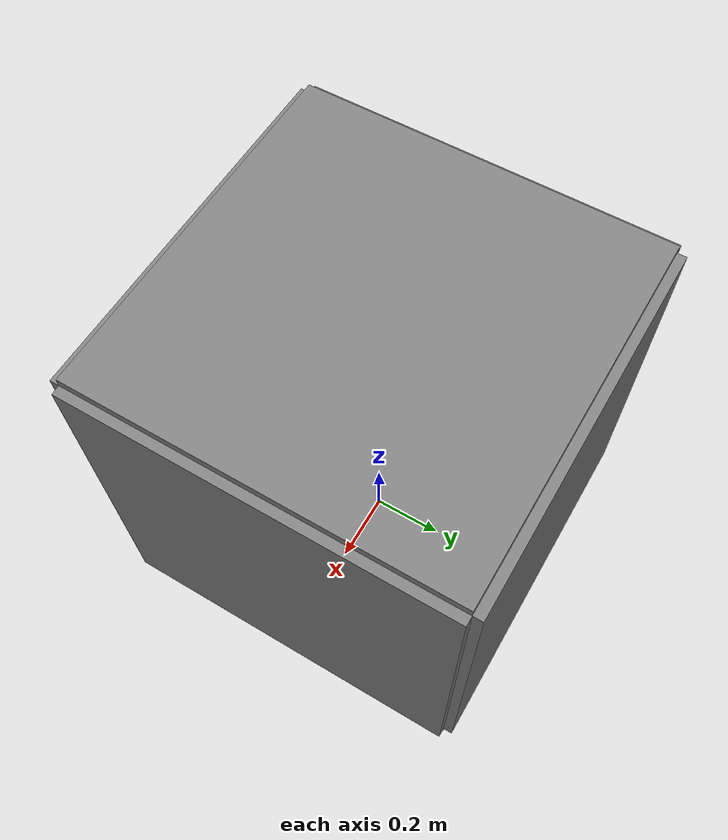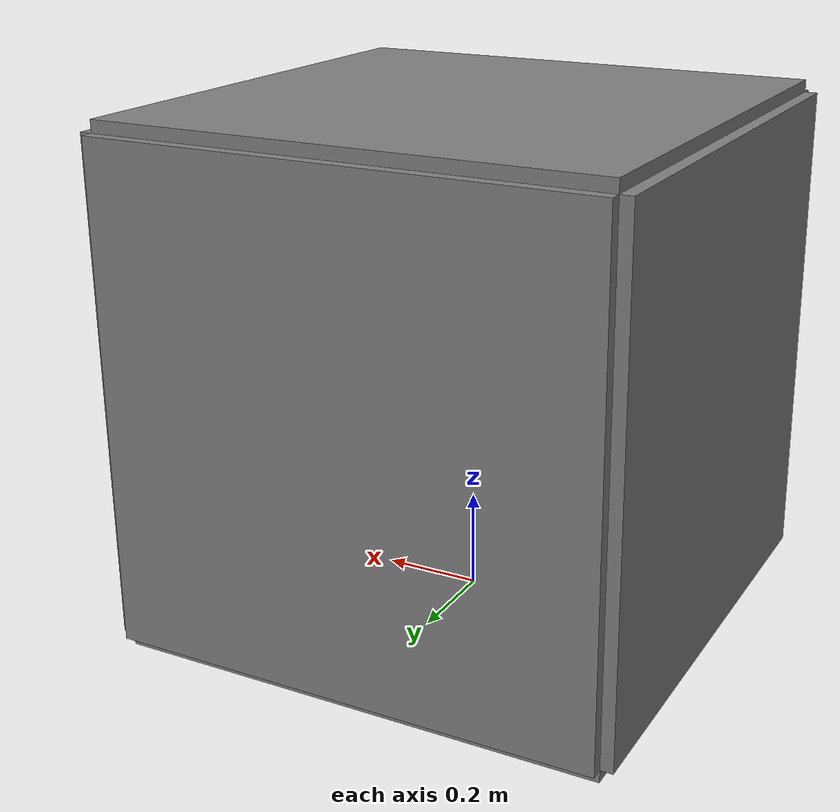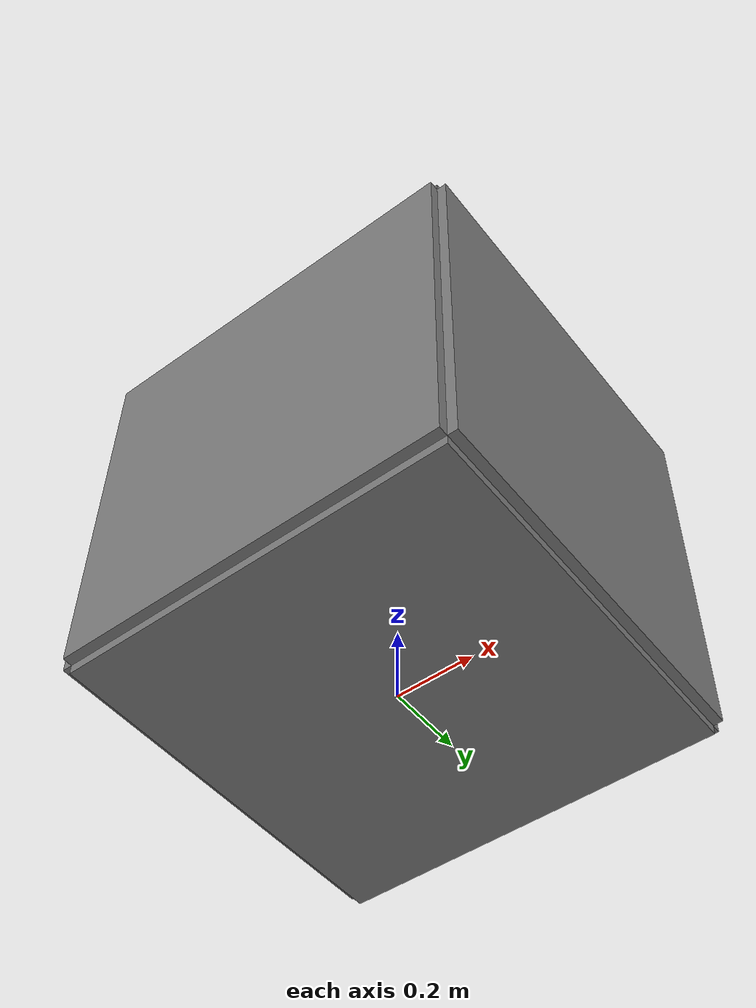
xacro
<?xml version="1.0"?>
<robot name="hollow_cube_with_reaction_wheel" xmlns:xacro="http://www.ros.org/wiki/xacro">

  <!-- Define the hollow cube frame using six planes -->
  <link name="base_link"/>

  <!-- Cube Link -->
  <link name="cube">
    <inertial>
      <mass value="1.0"/>
      <origin xyz="0 0 0.5" rpy="0 0 0"/>
      <inertia ixx="0.1" ixy="0.0" ixz="0.0" iyy="0.1" iyz="0.0" izz="0.1"/>
    </inertial>
    <collision>
      <origin xyz="0 0 0.5" rpy="0 0 0"/>
      <geometry>
        <box size="1 1 1"/>
      </geometry>
    </collision>
    <visual>
      <geometry>
        <box size="1 1 0.05"/>
      </geometry>
      <origin xyz="0 0 1" rpy="0 0 0"/>
      <material name="gray">
        <color rgba="0.5 0.5 0.5 1.0"/>
      </material>
    </visual>

    <visual>
      <geometry>
        <box size="1 1 0.05"/>
      </geometry>
      <origin xyz="0 0 0" rpy="0 0 0"/>
      <material name="gray">
        <color rgba="0.5 0.5 0.5 1.0"/>
      </material>
    </visual>

    <visual>
      <geometry>
        <box size="1 0.05 1"/>
      </geometry>
      <origin xyz="0 0.5 0.5" rpy="0 0 0"/>
      <material name="gray">
        <color rgba="0.5 0.5 0.5 1.0"/>
      </material>
    </visual>

    <visual>
      <geometry>
        <box size="1 0.05 1"/>
      </geometry>
      <origin xyz="0 -0.5 0.5" rpy="0 0 0"/>
      <material name="gray">
        <color rgba="0.5 0.5 0.5 1.0"/>
      </material>
    </visual>

    <visual>
      <geometry>
        <box size="0.05 1 1"/>
      </geometry>
      <origin xyz="0.5 0 0.5" rpy="0 0 0"/>
      <material name="gray">
        <color rgba="0.5 0.5 0.5 1.0"/>
      </material>
    </visual>

    <visual>
      <geometry>
        <box size="0.05 1 1"/>
      </geometry>
      <origin xyz="-0.5 0 0.5" rpy="0 0 0"/>
      <material name="gray">
        <color rgba="0.5 0.5 0.5 1.0"/>
      </material>
    </visual>
</link>

  <!-- Reaction Wheel Link -->
  <link name="reaction_wheel">
    <inertial>
      <mass value="0.1"/>
      <inertia ixx="0.001" ixy="0.0" ixz="0.0" iyy="0.001" iyz="0.0" izz="0.001"/>
    </inertial>
    <collision>
      <origin xyz="0 0 0" rpy="-1.5708 0 0"/>
      <geometry>
        <cylinder radius="0.1" length="0.05"/>
      </geometry>
    </collision>
    <visual>
      <origin xyz="0 0 0" rpy="-1.5708 0 0"/>
      <geometry>
        <cylinder radius="0.4" length="0.05"/>
      </geometry>
      <material name="blue">
        <color rgba="0.0 0.0 1.0 1.0"/>
      </material>
    </visual>
  </link>

  <!-- Fixed joint between base_link and cube -->
  <joint name="base_to_cube" type="fixed">
    <parent link="base_link"/>
    <child link="cube"/>
    <origin xyz="0 0 0" rpy="0 0 0"/>
  </joint>

  <!-- Continuous joint between base_link and reaction_wheel -->
  <joint name="wheel_joint" type="continuous">
    <parent link="base_link"/>
    <child link="reaction_wheel"/>
    <origin xyz="0 0 0.5" rpy="0 0 0"/>
    <axis xyz="0 1 0"/>
  </joint>

  <ros2_control name ="GazeboSystem" type="system">
    <hardware>
      <plugin>gazebo_ros2_control/GazeboSystem</plugin>
    </hardware>
    <joint name="wheel_joint">
      <command_interface name="velocity"/>
      <state_interface name="velocity"/>
      <state_interface name="position"/>
      <state_interface name="effort"/>
    </joint >
  </ros2_control>

  <gazebo>
    <plugin name="gazebo_ros2_control" filename="libgazebo_ros2_control.so">
      <parameters>$(find motion)/config/controllers.yaml</parameters>
      <robot_param>robot_description</robot_param>
      <robot_param_node>robot_state_publisher</robot_param_node>
    </plugin>
  </gazebo>

</robot>
